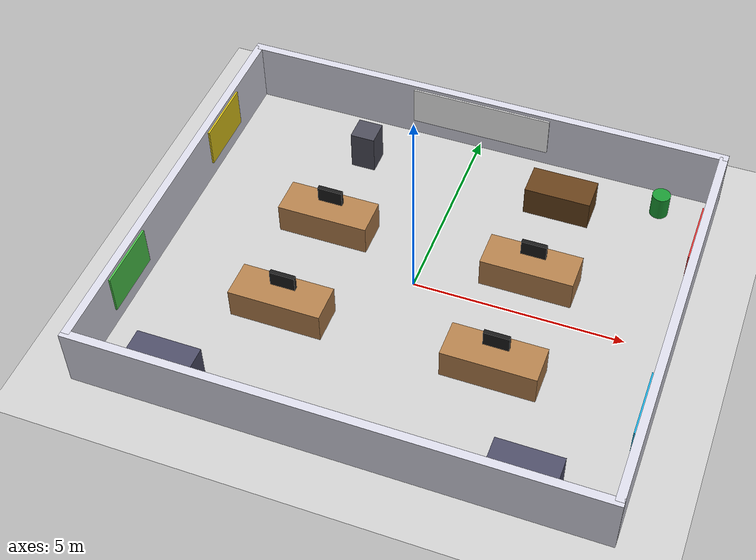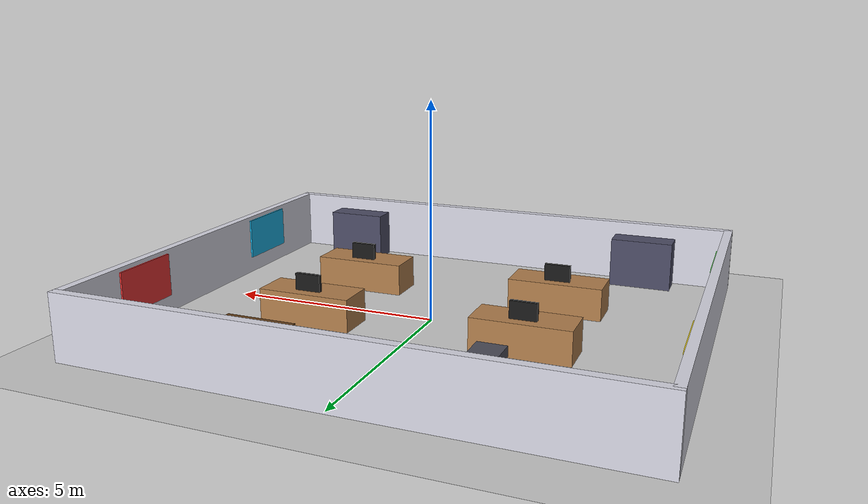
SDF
<?xml version="1.0" ?>
<sdf version="1.6">
  <world name="world_c_classroom">
    <include>
      <uri>model://sun</uri>
    </include>
    <include>
      <uri>model://ground_plane</uri>
    </include>

    <physics type="ode">
      <real_time_update_rate>1000.0</real_time_update_rate>
      <max_step_size>0.001</max_step_size>
      <real_time_factor>1.0</real_time_factor>
    </physics>

    <!-- ================= DINDING RUANG KELAS/LAB (12m x 10m x 1.5m) ================= -->
    <model name="class_north">
      <static>true</static>
      <pose>0 5.0 0.75 0 0 0</pose>
      <link name="link">
        <collision name="c"><geometry><box><size>12.2 0.2 1.5</size></box></geometry></collision>
        <visual name="v">
          <geometry><box><size>12.2 0.2 1.5</size></box></geometry>
          <material><ambient>0.85 0.85 0.9 1</ambient><diffuse>0.85 0.85 0.9 1</diffuse></material>
        </visual>
      </link>
    </model>

    <model name="class_south">
      <static>true</static>
      <pose>0 -5.0 0.75 0 0 0</pose>
      <link name="link">
        <collision name="c"><geometry><box><size>12.2 0.2 1.5</size></box></geometry></collision>
        <visual name="v">
          <geometry><box><size>12.2 0.2 1.5</size></box></geometry>
          <material><ambient>0.85 0.85 0.9 1</ambient><diffuse>0.85 0.85 0.9 1</diffuse></material>
        </visual>
      </link>
    </model>

    <model name="class_east">
      <static>true</static>
      <pose>6.0 0 0.75 0 0 0</pose>
      <link name="link">
        <collision name="c"><geometry><box><size>0.2 10.0 1.5</size></box></geometry></collision>
        <visual name="v">
          <geometry><box><size>0.2 10.0 1.5</size></box></geometry>
          <material><ambient>0.85 0.85 0.9 1</ambient><diffuse>0.85 0.85 0.9 1</diffuse></material>
        </visual>
      </link>
    </model>

    <model name="class_west">
      <static>true</static>
      <pose>-6.0 0 0.75 0 0 0</pose>
      <link name="link">
        <collision name="c"><geometry><box><size>0.2 10.0 1.5</size></box></geometry></collision>
        <visual name="v">
          <geometry><box><size>0.2 10.0 1.5</size></box></geometry>
          <material><ambient>0.85 0.85 0.9 1</ambient><diffuse>0.85 0.85 0.9 1</diffuse></material>
        </visual>
      </link>
    </model>

    <!-- ================= FITUR VISUAL DINDING (POSTER/PAPAN TULIS) ================= -->
    <!-- Papan Tulis Putih di Dinding Utara (Depan Kelas) -->
    <model name="whiteboard">
      <static>true</static>
      <pose>0 4.88 0.9 0 0 0</pose>
      <link name="link">
        <collision name="c"><geometry><box><size>3.5 0.04 1.0</size></box></geometry></collision>
        <visual name="v">
          <geometry><box><size>3.5 0.04 1.0</size></box></geometry>
          <material><ambient>0.98 0.98 0.98 1</ambient><diffuse>0.98 0.98 0.98 1</diffuse></material>
        </visual>
      </link>
    </model>

    <!-- Poster Berwarna di Dinding Timur (Fitur Visual ORB Kaya) -->
    <model name="poster_east_1">
      <static>true</static>
      <pose>5.88 2.5 0.9 0 0 0</pose>
      <link name="link">
        <visual name="v">
          <geometry><box><size>0.04 1.6 1.0</size></box></geometry>
          <material><ambient>0.9 0.2 0.2 1</ambient><diffuse>0.9 0.2 0.2 1</diffuse></material>
        </visual>
      </link>
    </model>

    <model name="poster_east_2">
      <static>true</static>
      <pose>5.88 -2.5 0.9 0 0 0</pose>
      <link name="link">
        <visual name="v">
          <geometry><box><size>0.04 1.6 1.0</size></box></geometry>
          <material><ambient>0.1 0.7 0.9 1</ambient><diffuse>0.1 0.7 0.9 1</diffuse></material>
        </visual>
      </link>
    </model>

    <!-- Poster Berwarna di Dinding Barat -->
    <model name="poster_west_1">
      <static>true</static>
      <pose>-5.88 2.5 0.9 0 0 0</pose>
      <link name="link">
        <visual name="v">
          <geometry><box><size>0.04 1.6 1.0</size></box></geometry>
          <material><ambient>0.9 0.8 0.1 1</ambient><diffuse>0.9 0.8 0.1 1</diffuse></material>
        </visual>
      </link>
    </model>

    <model name="poster_west_2">
      <static>true</static>
      <pose>-5.88 -2.5 0.9 0 0 0</pose>
      <link name="link">
        <visual name="v">
          <geometry><box><size>0.04 1.6 1.0</size></box></geometry>
          <material><ambient>0.3 0.8 0.3 1</ambient><diffuse>0.3 0.8 0.3 1</diffuse></material>
        </visual>
      </link>
    </model>

    <!-- ================= AREA MEJA DOSEN / INSTRUKTUR ================= -->
    <model name="lecturer_desk">
      <static>true</static>
      <pose>2.5 3.5 0.38 0 0 0</pose>
      <link name="link">
        <collision name="c"><geometry><box><size>1.6 0.8 0.76</size></box></geometry></collision>
        <visual name="v">
          <geometry><box><size>1.6 0.8 0.76</size></box></geometry>
          <material><ambient>0.4 0.25 0.1 1</ambient><diffuse>0.4 0.25 0.1 1</diffuse></material>
        </visual>
      </link>
    </model>

    <!-- Podium Dosen -->
    <model name="podium">
      <static>true</static>
      <pose>-2.5 3.5 0.5 0 0 0</pose>
      <link name="link">
        <collision name="c"><geometry><box><size>0.6 0.6 1.0</size></box></geometry></collision>
        <visual name="v">
          <geometry><box><size>0.6 0.6 1.0</size></box></geometry>
          <material><ambient>0.3 0.3 0.35 1</ambient><diffuse>0.3 0.3 0.35 1</diffuse></material>
        </visual>
      </link>
    </model>

    <!-- ================= BARISAN MEJA PRAKTIKUM MAHASISWA ================= -->
    <!-- Baris 1 - Meja Kiri -->
    <model name="desk_row1_left">
      <static>true</static>
      <pose>-2.5 1.0 0.38 0 0 0</pose>
      <link name="link">
        <collision name="c"><geometry><box><size>2.2 0.9 0.76</size></box></geometry></collision>
        <visual name="v">
          <geometry><box><size>2.2 0.9 0.76</size></box></geometry>
          <material><ambient>0.7 0.5 0.3 1</ambient><diffuse>0.7 0.5 0.3 1</diffuse></material>
        </visual>
      </link>
    </model>

    <!-- Monitor Komputer di Meja Kiri 1 -->
    <model name="monitor_r1_l">
      <static>true</static>
      <pose>-2.5 1.15 0.95 0 0 0</pose>
      <link name="link">
        <collision name="c"><geometry><box><size>0.6 0.1 0.4</size></box></geometry></collision>
        <visual name="v">
          <geometry><box><size>0.6 0.1 0.4</size></box></geometry>
          <material><ambient>0.1 0.1 0.1 1</ambient><diffuse>0.1 0.1 0.1 1</diffuse></material>
        </visual>
      </link>
    </model>

    <!-- Baris 1 - Meja Kanan -->
    <model name="desk_row1_right">
      <static>true</static>
      <pose>2.5 1.0 0.38 0 0 0</pose>
      <link name="link">
        <collision name="c"><geometry><box><size>2.2 0.9 0.76</size></box></geometry></collision>
        <visual name="v">
          <geometry><box><size>2.2 0.9 0.76</size></box></geometry>
          <material><ambient>0.7 0.5 0.3 1</ambient><diffuse>0.7 0.5 0.3 1</diffuse></material>
        </visual>
      </link>
    </model>

    <!-- Monitor Komputer di Meja Kanan 1 -->
    <model name="monitor_r1_r">
      <static>true</static>
      <pose>2.5 1.15 0.95 0 0 0</pose>
      <link name="link">
        <collision name="c"><geometry><box><size>0.6 0.1 0.4</size></box></geometry></collision>
        <visual name="v">
          <geometry><box><size>0.6 0.1 0.4</size></box></geometry>
          <material><ambient>0.1 0.1 0.1 1</ambient><diffuse>0.1 0.1 0.1 1</diffuse></material>
        </visual>
      </link>
    </model>

    <!-- Baris 2 - Meja Kiri -->
    <model name="desk_row2_left">
      <static>true</static>
      <pose>-2.5 -1.8 0.38 0 0 0</pose>
      <link name="link">
        <collision name="c"><geometry><box><size>2.2 0.9 0.76</size></box></geometry></collision>
        <visual name="v">
          <geometry><box><size>2.2 0.9 0.76</size></box></geometry>
          <material><ambient>0.7 0.5 0.3 1</ambient><diffuse>0.7 0.5 0.3 1</diffuse></material>
        </visual>
      </link>
    </model>

    <!-- Monitor Komputer di Meja Kiri 2 -->
    <model name="monitor_r2_l">
      <static>true</static>
      <pose>-2.5 -1.65 0.95 0 0 0</pose>
      <link name="link">
        <collision name="c"><geometry><box><size>0.6 0.1 0.4</size></box></geometry></collision>
        <visual name="v">
          <geometry><box><size>0.6 0.1 0.4</size></box></geometry>
          <material><ambient>0.1 0.1 0.1 1</ambient><diffuse>0.1 0.1 0.1 1</diffuse></material>
        </visual>
      </link>
    </model>

    <!-- Baris 2 - Meja Kanan -->
    <model name="desk_row2_right">
      <static>true</static>
      <pose>2.5 -1.8 0.38 0 0 0</pose>
      <link name="link">
        <collision name="c"><geometry><box><size>2.2 0.9 0.76</size></box></geometry></collision>
        <visual name="v">
          <geometry><box><size>2.2 0.9 0.76</size></box></geometry>
          <material><ambient>0.7 0.5 0.3 1</ambient><diffuse>0.7 0.5 0.3 1</diffuse></material>
        </visual>
      </link>
    </model>

    <!-- Monitor Komputer di Meja Kanan 2 -->
    <model name="monitor_r2_r">
      <static>true</static>
      <pose>2.5 -1.65 0.95 0 0 0</pose>
      <link name="link">
        <collision name="c"><geometry><box><size>0.6 0.1 0.4</size></box></geometry></collision>
        <visual name="v">
          <geometry><box><size>0.6 0.1 0.4</size></box></geometry>
          <material><ambient>0.1 0.1 0.1 1</ambient><diffuse>0.1 0.1 0.1 1</diffuse></material>
        </visual>
      </link>
    </model>

    <!-- ================= LEMARI & RINTANGAN TAMBAHAN ================= -->
    <!-- Lemari Laboratorium di Dinding Selatan -->
    <model name="lab_cabinet_1">
      <static>true</static>
      <pose>-4.0 -4.5 0.6 0 0 0</pose>
      <link name="link">
        <collision name="c"><geometry><box><size>1.5 0.6 1.2</size></box></geometry></collision>
        <visual name="v">
          <geometry><box><size>1.5 0.6 1.2</size></box></geometry>
          <material><ambient>0.3 0.3 0.4 1</ambient><diffuse>0.3 0.3 0.4 1</diffuse></material>
        </visual>
      </link>
    </model>

    <model name="lab_cabinet_2">
      <static>true</static>
      <pose>4.0 -4.5 0.6 0 0 0</pose>
      <link name="link">
        <collision name="c"><geometry><box><size>1.5 0.6 1.2</size></box></geometry></collision>
        <visual name="v">
          <geometry><box><size>1.5 0.6 1.2</size></box></geometry>
          <material><ambient>0.3 0.3 0.4 1</ambient><diffuse>0.3 0.3 0.4 1</diffuse></material>
        </visual>
      </link>
    </model>

    <!-- Tempat Sampah Laboratorium di Sudut Kelas Depan Timur -->
    <model name="recycle_bin">
      <static>true</static>
      <pose>4.8 4.2 0.3 0 0 0</pose>
      <link name="link">
        <collision name="c"><geometry><cylinder><radius>0.22</radius><length>0.6</length></cylinder></geometry></collision>
        <visual name="v">
          <geometry><cylinder><radius>0.22</radius><length>0.6</length></cylinder></geometry>
          <material><ambient>0.1 0.6 0.2 1</ambient><diffuse>0.1 0.6 0.2 1</diffuse></material>
        </visual>
      </link>
    </model>

  </world>
</sdf>
